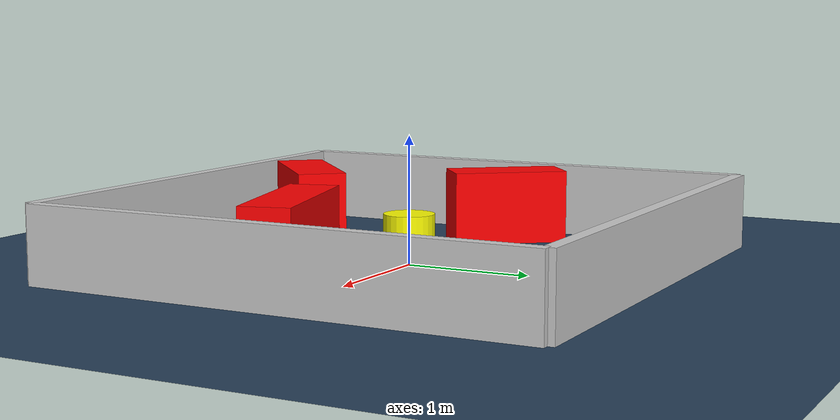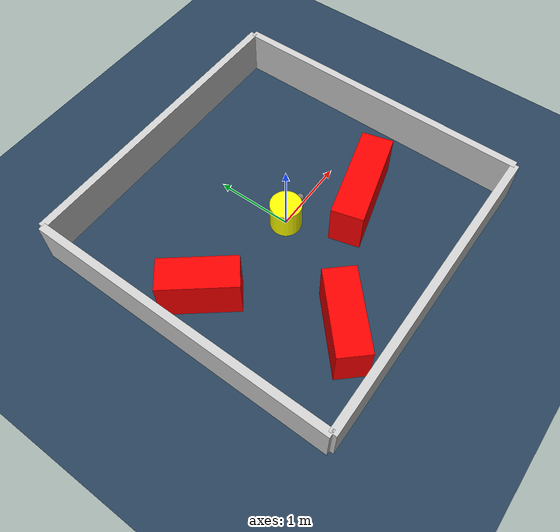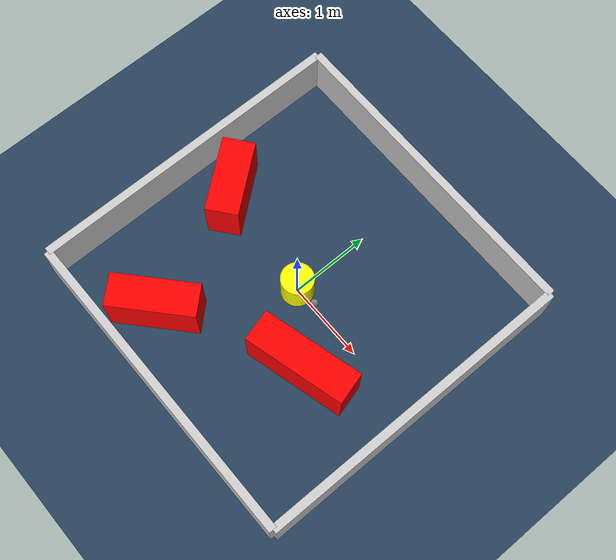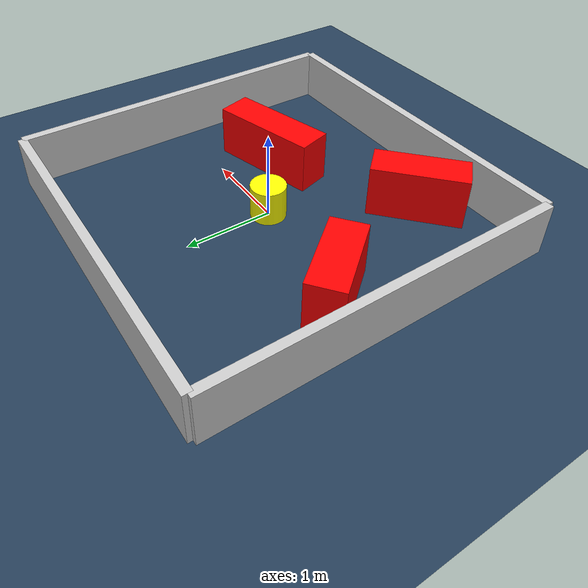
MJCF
<?xml version="1.0" ?>
<mujoco model="generated_environment">
  <option timestep="0.01" integrator="RK4" cone="elliptic"/>
  <default>
    <geom density="1"/>
  </default>
  <asset>
    <texture builtin="gradient" height="3072" rgb1="0.3 0.5 0.7" rgb2="0 0 0" type="skybox" width="512"/>
    <texture builtin="checker" height="300" mark="edge" markrgb="0.8 0.8 0.8" name="groundplane" rgb1="0.2 0.3 0.4" rgb2="0.1 0.2 0.3" type="2d" width="300"/>
    <material name="groundplane" reflectance="0.2" texrepeat="5 5" texture="groundplane" texuniform="true"/>
    <material name="robot" rgba="0.0 1.0 0.0 1"/>
  </asset>
  <worldbody>
    <light dir="0 0 -1" directional="true" pos="0 0 1.5"/>
    <geom condim="4" friction="1.0 0.005 0.001" material="groundplane" name="floor" size="0 0 0.05" type="plane"/>
    <body name="walls">
      <geom name="wall_1" condim="4" pos="-2.0 0.0 0.3" rgba="0.800000011920929 0.800000011920929 0.800000011920929 1.0" size="0.05 2.0 0.3" type="box"/>
      <geom name="wall_2" condim="4" pos="2.0 0.0 0.3" rgba="0.800000011920929 0.800000011920929 0.800000011920929 1.0" size="0.05 2.0 0.3" type="box"/>
      <geom name="wall_3" condim="4" pos="0.0 -2.0 0.3" rgba="0.800000011920929 0.800000011920929 0.800000011920929 1.0" size="2.0 0.05 0.3" type="box"/>
      <geom name="wall_4" condim="4" pos="0.0 2.0 0.3" rgba="0.800000011920929 0.800000011920929 0.800000011920929 1.0" size="2.0 0.05 0.3" type="box"/>
    </body>
    <body name="robot">
      <joint name="joint_x" type="slide" pos="0 0 0" axis="1 0 0"/>
      <joint name="joint_y" type="slide" pos="0 0 0" axis="0 1 0"/>
      <geom name="robot" type="sphere" pos="0.3 0.0 0.2" size="0.05" mass="5." friction="1.0 0.005 0.0001" condim="4" rgba="0.5 0.5 0.5 1.0"/>
      <site name="sensor_ball"/>
    </body>
    <body name="obstacle_movable_1">
      <geom name="obstacle_movable_1" condim="4" pos="0.0 0.0 0.2" euler="0 0 0.0" friction="1.0 0.005 0.001" rgba="1.0 1.0 0.0 1.0" size="0.2 0.2 0.0" type="cylinder" mass="0.1"/>
      <joint type="free"/>
    </body>
    <body name="obstacle_2_static">
      <geom name="obstacle_2_static" condim="4" pos="-1.4164928565518926 0.17187200772526734 0.3" euler="0 0 128.62576295984547" friction="1.0 0.005 0.001" rgba="1 0 0 1" size="0.4721486226603354 0.2 0.3" type="box"/>
    </body>
    <body name="obstacle_3_static">
      <geom name="obstacle_3_static" condim="4" pos="0.7875559032217205 -0.578005851775897 0.3" euler="0 0 195.28278819794264" friction="1.0 0.005 0.001" rgba="1 0 0 1" size="0.6340949761728789 0.2 0.3" type="box"/>
    </body>
    <body name="obstacle_4_static">
      <geom name="obstacle_4_static" condim="4" pos="-0.8305723697878402 -1.4027585808637957 0.3" euler="0 0 42.455069744603485" friction="1.0 0.005 0.001" rgba="1 0 0 1" size="0.5236021644327059 0.2 0.3" type="box"/>
    </body>
  </worldbody>
  <actuator>
    <motor name="actuator_x" joint="joint_x" gear="1" ctrlrange="-1 1"/>
    <motor name="actuator_y" joint="joint_y" gear="1" ctrlrange="-1 1"/>
  </actuator>
</mujoco>
